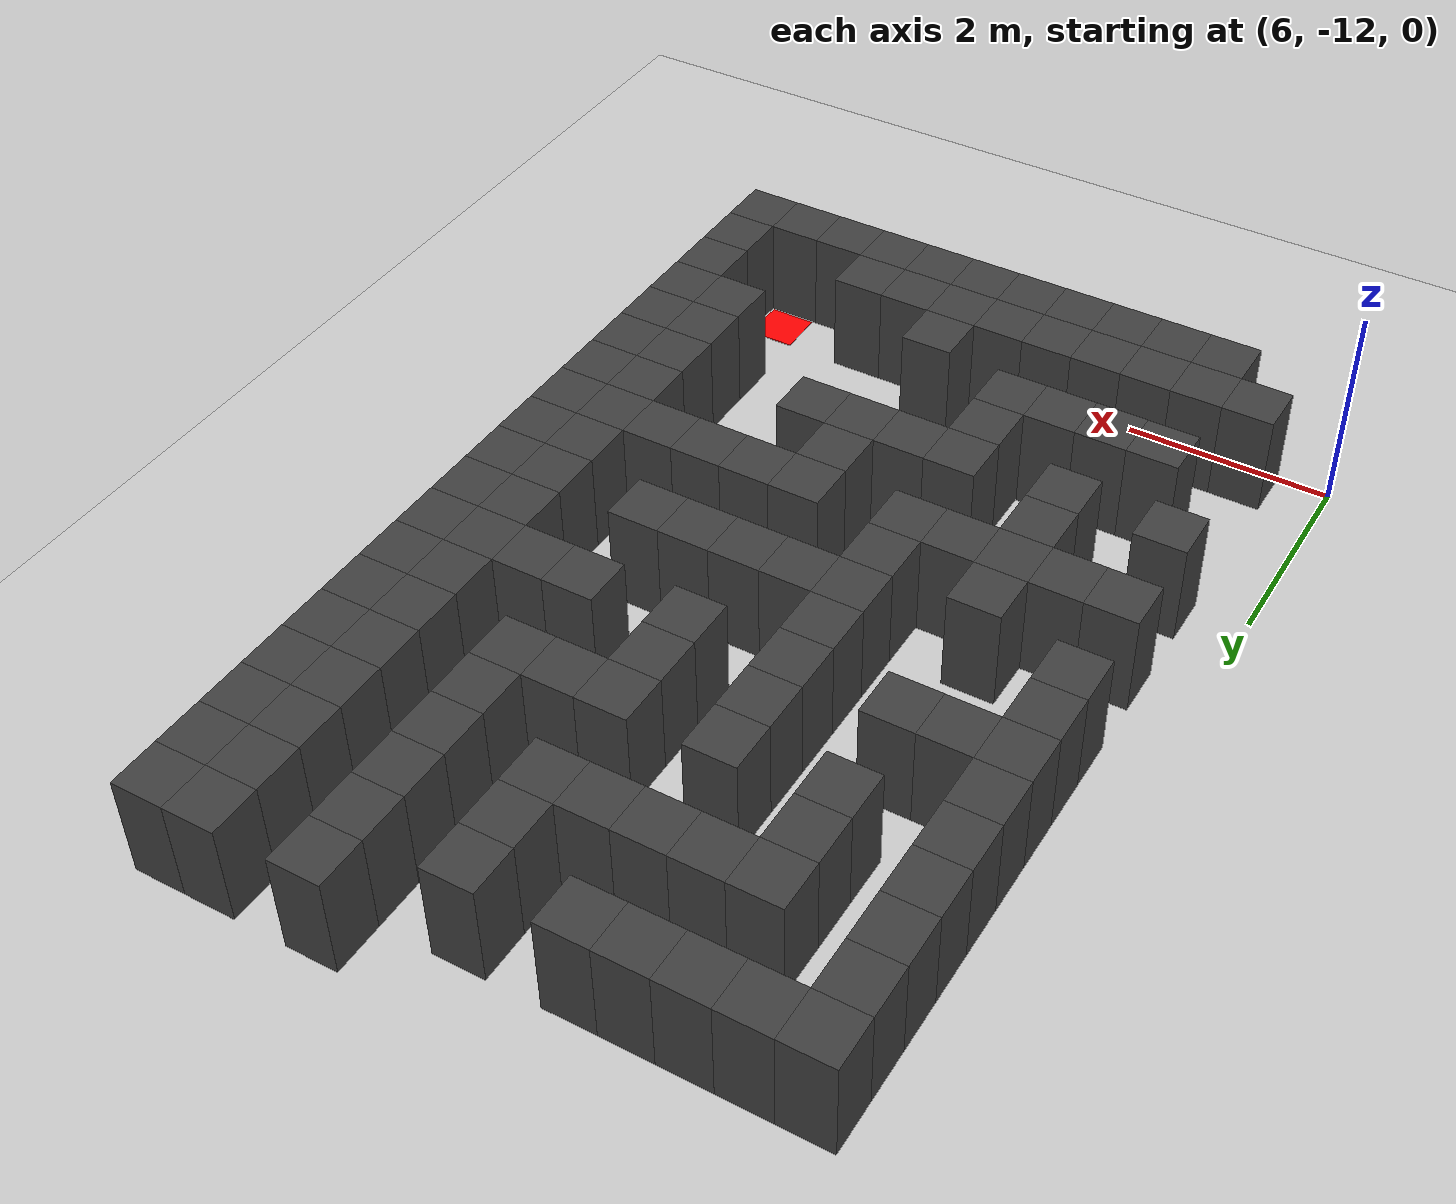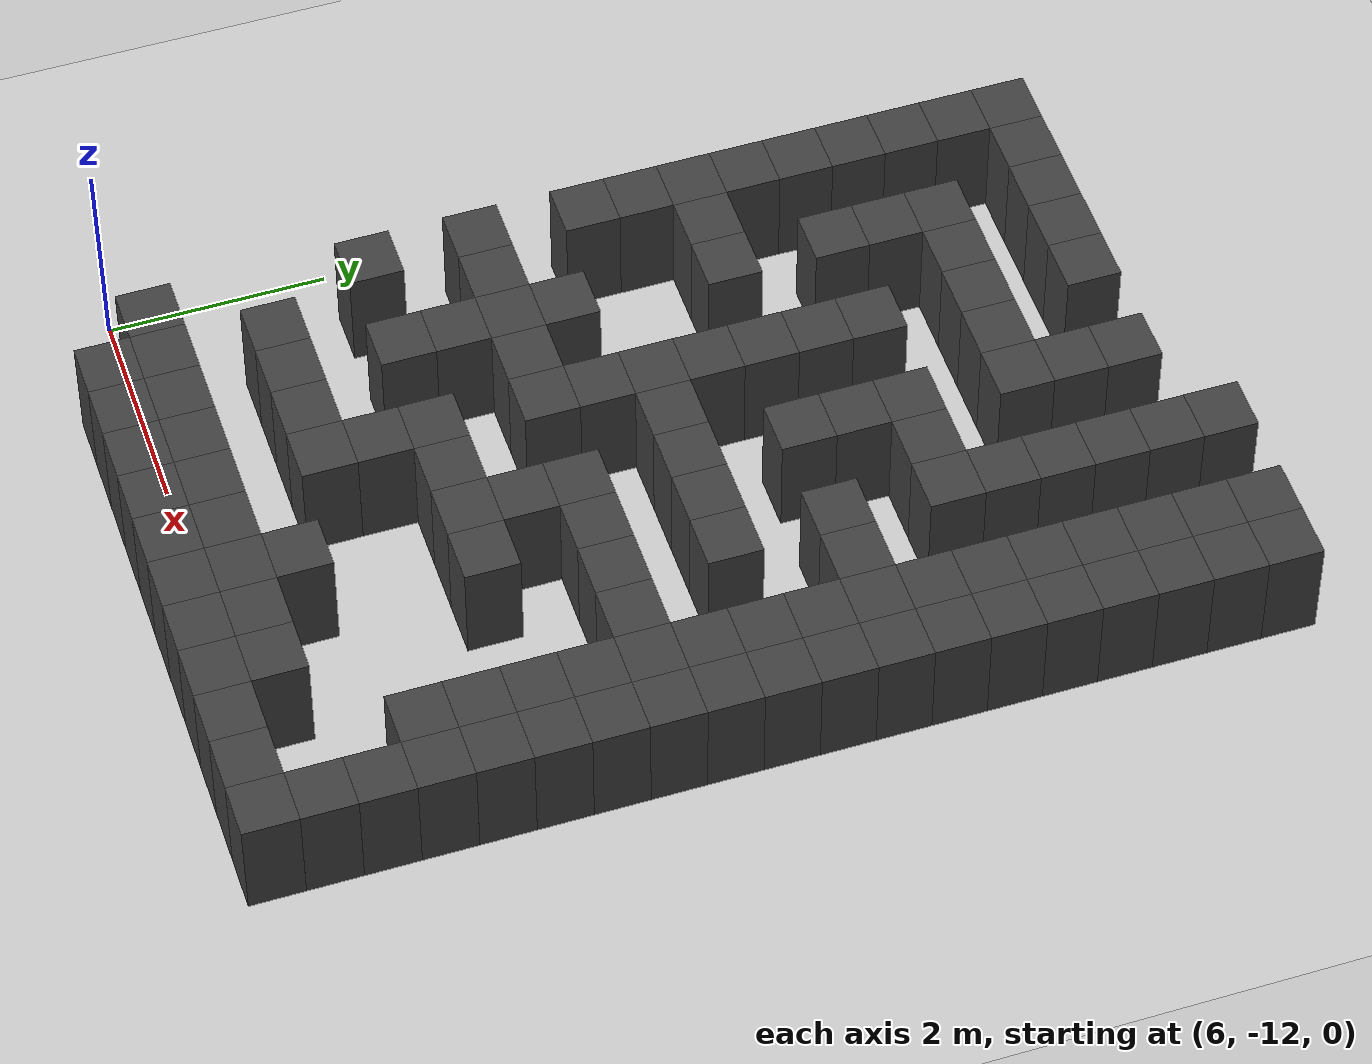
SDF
<sdf version="1.7">
 <world name="map_16588">
  <model name="ground_plane">
   <static>true</static>
   <link name="link">
    <collision name="collision">
     <geometry><plane><normal>0 0 1</normal><size>200 200</size></plane></geometry>
    </collision>
    <visual name="visual">
     <geometry><plane><normal>0 0 1</normal><size>200 200</size></plane></geometry>
     <material><ambient>0.8 0.8 0.8 1</ambient><diffuse>0.8 0.8 0.8 1</diffuse></material>
    </visual>
   </link>
  </model>
  <model name="maze_environment">
   <static>true</static>
   <link name="wall_768">
    <pose>10.750 -3.250 0.500 0 0 0</pose>
    <collision name="col"><geometry><box><size>0.5 0.5 1.0</size></box></geometry></collision>
    <visual name="vis">
     <geometry><box><size>0.5 0.5 1.0</size></box></geometry>
     <material><ambient>0.15 0.15 0.15 1</ambient><diffuse>0.25 0.25 0.25 1</diffuse></material>
    </visual>
   </link>
   <link name="wall_769">
    <pose>11.750 -3.250 0.500 0 0 0</pose>
    <collision name="col"><geometry><box><size>0.5 0.5 1.0</size></box></geometry></collision>
    <visual name="vis">
     <geometry><box><size>0.5 0.5 1.0</size></box></geometry>
     <material><ambient>0.15 0.15 0.15 1</ambient><diffuse>0.25 0.25 0.25 1</diffuse></material>
    </visual>
   </link>
   <link name="wall_770">
    <pose>12.250 -3.250 0.500 0 0 0</pose>
    <collision name="col"><geometry><box><size>0.5 0.5 1.0</size></box></geometry></collision>
    <visual name="vis">
     <geometry><box><size>0.5 0.5 1.0</size></box></geometry>
     <material><ambient>0.15 0.15 0.15 1</ambient><diffuse>0.25 0.25 0.25 1</diffuse></material>
    </visual>
   </link>
   <link name="wall_796">
    <pose>6.750 -3.750 0.500 0 0 0</pose>
    <collision name="col"><geometry><box><size>0.5 0.5 1.0</size></box></geometry></collision>
    <visual name="vis">
     <geometry><box><size>0.5 0.5 1.0</size></box></geometry>
     <material><ambient>0.15 0.15 0.15 1</ambient><diffuse>0.25 0.25 0.25 1</diffuse></material>
    </visual>
   </link>
   <link name="wall_797">
    <pose>7.250 -3.750 0.500 0 0 0</pose>
    <collision name="col"><geometry><box><size>0.5 0.5 1.0</size></box></geometry></collision>
    <visual name="vis">
     <geometry><box><size>0.5 0.5 1.0</size></box></geometry>
     <material><ambient>0.15 0.15 0.15 1</ambient><diffuse>0.25 0.25 0.25 1</diffuse></material>
    </visual>
   </link>
   <link name="wall_798">
    <pose>7.750 -3.750 0.500 0 0 0</pose>
    <collision name="col"><geometry><box><size>0.5 0.5 1.0</size></box></geometry></collision>
    <visual name="vis">
     <geometry><box><size>0.5 0.5 1.0</size></box></geometry>
     <material><ambient>0.15 0.15 0.15 1</ambient><diffuse>0.25 0.25 0.25 1</diffuse></material>
    </visual>
   </link>
   <link name="wall_799">
    <pose>8.250 -3.750 0.500 0 0 0</pose>
    <collision name="col"><geometry><box><size>0.5 0.5 1.0</size></box></geometry></collision>
    <visual name="vis">
     <geometry><box><size>0.5 0.5 1.0</size></box></geometry>
     <material><ambient>0.15 0.15 0.15 1</ambient><diffuse>0.25 0.25 0.25 1</diffuse></material>
    </visual>
   </link>
   <link name="wall_800">
    <pose>8.750 -3.750 0.500 0 0 0</pose>
    <collision name="col"><geometry><box><size>0.5 0.5 1.0</size></box></geometry></collision>
    <visual name="vis">
     <geometry><box><size>0.5 0.5 1.0</size></box></geometry>
     <material><ambient>0.15 0.15 0.15 1</ambient><diffuse>0.25 0.25 0.25 1</diffuse></material>
    </visual>
   </link>
   <link name="wall_801">
    <pose>9.750 -3.750 0.500 0 0 0</pose>
    <collision name="col"><geometry><box><size>0.5 0.5 1.0</size></box></geometry></collision>
    <visual name="vis">
     <geometry><box><size>0.5 0.5 1.0</size></box></geometry>
     <material><ambient>0.15 0.15 0.15 1</ambient><diffuse>0.25 0.25 0.25 1</diffuse></material>
    </visual>
   </link>
   <link name="wall_802">
    <pose>10.750 -3.750 0.500 0 0 0</pose>
    <collision name="col"><geometry><box><size>0.5 0.5 1.0</size></box></geometry></collision>
    <visual name="vis">
     <geometry><box><size>0.5 0.5 1.0</size></box></geometry>
     <material><ambient>0.15 0.15 0.15 1</ambient><diffuse>0.25 0.25 0.25 1</diffuse></material>
    </visual>
   </link>
   <link name="wall_803">
    <pose>11.750 -3.750 0.500 0 0 0</pose>
    <collision name="col"><geometry><box><size>0.5 0.5 1.0</size></box></geometry></collision>
    <visual name="vis">
     <geometry><box><size>0.5 0.5 1.0</size></box></geometry>
     <material><ambient>0.15 0.15 0.15 1</ambient><diffuse>0.25 0.25 0.25 1</diffuse></material>
    </visual>
   </link>
   <link name="wall_804">
    <pose>12.250 -3.750 0.500 0 0 0</pose>
    <collision name="col"><geometry><box><size>0.5 0.5 1.0</size></box></geometry></collision>
    <visual name="vis">
     <geometry><box><size>0.5 0.5 1.0</size></box></geometry>
     <material><ambient>0.15 0.15 0.15 1</ambient><diffuse>0.25 0.25 0.25 1</diffuse></material>
    </visual>
   </link>
   <link name="wall_817">
    <pose>6.750 -4.250 0.500 0 0 0</pose>
    <collision name="col"><geometry><box><size>0.5 0.5 1.0</size></box></geometry></collision>
    <visual name="vis">
     <geometry><box><size>0.5 0.5 1.0</size></box></geometry>
     <material><ambient>0.15 0.15 0.15 1</ambient><diffuse>0.25 0.25 0.25 1</diffuse></material>
    </visual>
   </link>
   <link name="wall_818">
    <pose>9.750 -4.250 0.500 0 0 0</pose>
    <collision name="col"><geometry><box><size>0.5 0.5 1.0</size></box></geometry></collision>
    <visual name="vis">
     <geometry><box><size>0.5 0.5 1.0</size></box></geometry>
     <material><ambient>0.15 0.15 0.15 1</ambient><diffuse>0.25 0.25 0.25 1</diffuse></material>
    </visual>
   </link>
   <link name="wall_819">
    <pose>10.750 -4.250 0.500 0 0 0</pose>
    <collision name="col"><geometry><box><size>0.5 0.5 1.0</size></box></geometry></collision>
    <visual name="vis">
     <geometry><box><size>0.5 0.5 1.0</size></box></geometry>
     <material><ambient>0.15 0.15 0.15 1</ambient><diffuse>0.25 0.25 0.25 1</diffuse></material>
    </visual>
   </link>
   <link name="wall_820">
    <pose>11.750 -4.250 0.500 0 0 0</pose>
    <collision name="col"><geometry><box><size>0.5 0.5 1.0</size></box></geometry></collision>
    <visual name="vis">
     <geometry><box><size>0.5 0.5 1.0</size></box></geometry>
     <material><ambient>0.15 0.15 0.15 1</ambient><diffuse>0.25 0.25 0.25 1</diffuse></material>
    </visual>
   </link>
   <link name="wall_821">
    <pose>12.250 -4.250 0.500 0 0 0</pose>
    <collision name="col"><geometry><box><size>0.5 0.5 1.0</size></box></geometry></collision>
    <visual name="vis">
     <geometry><box><size>0.5 0.5 1.0</size></box></geometry>
     <material><ambient>0.15 0.15 0.15 1</ambient><diffuse>0.25 0.25 0.25 1</diffuse></material>
    </visual>
   </link>
   <link name="wall_845">
    <pose>6.750 -4.750 0.500 0 0 0</pose>
    <collision name="col"><geometry><box><size>0.5 0.5 1.0</size></box></geometry></collision>
    <visual name="vis">
     <geometry><box><size>0.5 0.5 1.0</size></box></geometry>
     <material><ambient>0.15 0.15 0.15 1</ambient><diffuse>0.25 0.25 0.25 1</diffuse></material>
    </visual>
   </link>
   <link name="wall_846">
    <pose>7.750 -4.750 0.500 0 0 0</pose>
    <collision name="col"><geometry><box><size>0.5 0.5 1.0</size></box></geometry></collision>
    <visual name="vis">
     <geometry><box><size>0.5 0.5 1.0</size></box></geometry>
     <material><ambient>0.15 0.15 0.15 1</ambient><diffuse>0.25 0.25 0.25 1</diffuse></material>
    </visual>
   </link>
   <link name="wall_847">
    <pose>8.250 -4.750 0.500 0 0 0</pose>
    <collision name="col"><geometry><box><size>0.5 0.5 1.0</size></box></geometry></collision>
    <visual name="vis">
     <geometry><box><size>0.5 0.5 1.0</size></box></geometry>
     <material><ambient>0.15 0.15 0.15 1</ambient><diffuse>0.25 0.25 0.25 1</diffuse></material>
    </visual>
   </link>
   <link name="wall_848">
    <pose>8.750 -4.750 0.500 0 0 0</pose>
    <collision name="col"><geometry><box><size>0.5 0.5 1.0</size></box></geometry></collision>
    <visual name="vis">
     <geometry><box><size>0.5 0.5 1.0</size></box></geometry>
     <material><ambient>0.15 0.15 0.15 1</ambient><diffuse>0.25 0.25 0.25 1</diffuse></material>
    </visual>
   </link>
   <link name="wall_849">
    <pose>9.250 -4.750 0.500 0 0 0</pose>
    <collision name="col"><geometry><box><size>0.5 0.5 1.0</size></box></geometry></collision>
    <visual name="vis">
     <geometry><box><size>0.5 0.5 1.0</size></box></geometry>
     <material><ambient>0.15 0.15 0.15 1</ambient><diffuse>0.25 0.25 0.25 1</diffuse></material>
    </visual>
   </link>
   <link name="wall_850">
    <pose>9.750 -4.750 0.500 0 0 0</pose>
    <collision name="col"><geometry><box><size>0.5 0.5 1.0</size></box></geometry></collision>
    <visual name="vis">
     <geometry><box><size>0.5 0.5 1.0</size></box></geometry>
     <material><ambient>0.15 0.15 0.15 1</ambient><diffuse>0.25 0.25 0.25 1</diffuse></material>
    </visual>
   </link>
   <link name="wall_851">
    <pose>10.750 -4.750 0.500 0 0 0</pose>
    <collision name="col"><geometry><box><size>0.5 0.5 1.0</size></box></geometry></collision>
    <visual name="vis">
     <geometry><box><size>0.5 0.5 1.0</size></box></geometry>
     <material><ambient>0.15 0.15 0.15 1</ambient><diffuse>0.25 0.25 0.25 1</diffuse></material>
    </visual>
   </link>
   <link name="wall_852">
    <pose>11.750 -4.750 0.500 0 0 0</pose>
    <collision name="col"><geometry><box><size>0.5 0.5 1.0</size></box></geometry></collision>
    <visual name="vis">
     <geometry><box><size>0.5 0.5 1.0</size></box></geometry>
     <material><ambient>0.15 0.15 0.15 1</ambient><diffuse>0.25 0.25 0.25 1</diffuse></material>
    </visual>
   </link>
   <link name="wall_853">
    <pose>12.250 -4.750 0.500 0 0 0</pose>
    <collision name="col"><geometry><box><size>0.5 0.5 1.0</size></box></geometry></collision>
    <visual name="vis">
     <geometry><box><size>0.5 0.5 1.0</size></box></geometry>
     <material><ambient>0.15 0.15 0.15 1</ambient><diffuse>0.25 0.25 0.25 1</diffuse></material>
    </visual>
   </link>
   <link name="wall_862">
    <pose>6.750 -5.250 0.500 0 0 0</pose>
    <collision name="col"><geometry><box><size>0.5 0.5 1.0</size></box></geometry></collision>
    <visual name="vis">
     <geometry><box><size>0.5 0.5 1.0</size></box></geometry>
     <material><ambient>0.15 0.15 0.15 1</ambient><diffuse>0.25 0.25 0.25 1</diffuse></material>
    </visual>
   </link>
   <link name="wall_863">
    <pose>7.750 -5.250 0.500 0 0 0</pose>
    <collision name="col"><geometry><box><size>0.5 0.5 1.0</size></box></geometry></collision>
    <visual name="vis">
     <geometry><box><size>0.5 0.5 1.0</size></box></geometry>
     <material><ambient>0.15 0.15 0.15 1</ambient><diffuse>0.25 0.25 0.25 1</diffuse></material>
    </visual>
   </link>
   <link name="wall_864">
    <pose>10.750 -5.250 0.500 0 0 0</pose>
    <collision name="col"><geometry><box><size>0.5 0.5 1.0</size></box></geometry></collision>
    <visual name="vis">
     <geometry><box><size>0.5 0.5 1.0</size></box></geometry>
     <material><ambient>0.15 0.15 0.15 1</ambient><diffuse>0.25 0.25 0.25 1</diffuse></material>
    </visual>
   </link>
   <link name="wall_865">
    <pose>11.750 -5.250 0.500 0 0 0</pose>
    <collision name="col"><geometry><box><size>0.5 0.5 1.0</size></box></geometry></collision>
    <visual name="vis">
     <geometry><box><size>0.5 0.5 1.0</size></box></geometry>
     <material><ambient>0.15 0.15 0.15 1</ambient><diffuse>0.25 0.25 0.25 1</diffuse></material>
    </visual>
   </link>
   <link name="wall_866">
    <pose>12.250 -5.250 0.500 0 0 0</pose>
    <collision name="col"><geometry><box><size>0.5 0.5 1.0</size></box></geometry></collision>
    <visual name="vis">
     <geometry><box><size>0.5 0.5 1.0</size></box></geometry>
     <material><ambient>0.15 0.15 0.15 1</ambient><diffuse>0.25 0.25 0.25 1</diffuse></material>
    </visual>
   </link>
   <link name="wall_890">
    <pose>6.750 -5.750 0.500 0 0 0</pose>
    <collision name="col"><geometry><box><size>0.5 0.5 1.0</size></box></geometry></collision>
    <visual name="vis">
     <geometry><box><size>0.5 0.5 1.0</size></box></geometry>
     <material><ambient>0.15 0.15 0.15 1</ambient><diffuse>0.25 0.25 0.25 1</diffuse></material>
    </visual>
   </link>
   <link name="wall_891">
    <pose>7.750 -5.750 0.500 0 0 0</pose>
    <collision name="col"><geometry><box><size>0.5 0.5 1.0</size></box></geometry></collision>
    <visual name="vis">
     <geometry><box><size>0.5 0.5 1.0</size></box></geometry>
     <material><ambient>0.15 0.15 0.15 1</ambient><diffuse>0.25 0.25 0.25 1</diffuse></material>
    </visual>
   </link>
   <link name="wall_892">
    <pose>8.750 -5.750 0.500 0 0 0</pose>
    <collision name="col"><geometry><box><size>0.5 0.5 1.0</size></box></geometry></collision>
    <visual name="vis">
     <geometry><box><size>0.5 0.5 1.0</size></box></geometry>
     <material><ambient>0.15 0.15 0.15 1</ambient><diffuse>0.25 0.25 0.25 1</diffuse></material>
    </visual>
   </link>
   <link name="wall_893">
    <pose>9.750 -5.750 0.500 0 0 0</pose>
    <collision name="col"><geometry><box><size>0.5 0.5 1.0</size></box></geometry></collision>
    <visual name="vis">
     <geometry><box><size>0.5 0.5 1.0</size></box></geometry>
     <material><ambient>0.15 0.15 0.15 1</ambient><diffuse>0.25 0.25 0.25 1</diffuse></material>
    </visual>
   </link>
   <link name="wall_894">
    <pose>10.250 -5.750 0.500 0 0 0</pose>
    <collision name="col"><geometry><box><size>0.5 0.5 1.0</size></box></geometry></collision>
    <visual name="vis">
     <geometry><box><size>0.5 0.5 1.0</size></box></geometry>
     <material><ambient>0.15 0.15 0.15 1</ambient><diffuse>0.25 0.25 0.25 1</diffuse></material>
    </visual>
   </link>
   <link name="wall_895">
    <pose>10.750 -5.750 0.500 0 0 0</pose>
    <collision name="col"><geometry><box><size>0.5 0.5 1.0</size></box></geometry></collision>
    <visual name="vis">
     <geometry><box><size>0.5 0.5 1.0</size></box></geometry>
     <material><ambient>0.15 0.15 0.15 1</ambient><diffuse>0.25 0.25 0.25 1</diffuse></material>
    </visual>
   </link>
   <link name="wall_896">
    <pose>11.750 -5.750 0.500 0 0 0</pose>
    <collision name="col"><geometry><box><size>0.5 0.5 1.0</size></box></geometry></collision>
    <visual name="vis">
     <geometry><box><size>0.5 0.5 1.0</size></box></geometry>
     <material><ambient>0.15 0.15 0.15 1</ambient><diffuse>0.25 0.25 0.25 1</diffuse></material>
    </visual>
   </link>
   <link name="wall_897">
    <pose>12.250 -5.750 0.500 0 0 0</pose>
    <collision name="col"><geometry><box><size>0.5 0.5 1.0</size></box></geometry></collision>
    <visual name="vis">
     <geometry><box><size>0.5 0.5 1.0</size></box></geometry>
     <material><ambient>0.15 0.15 0.15 1</ambient><diffuse>0.25 0.25 0.25 1</diffuse></material>
    </visual>
   </link>
   <link name="wall_907">
    <pose>6.750 -6.250 0.500 0 0 0</pose>
    <collision name="col"><geometry><box><size>0.5 0.5 1.0</size></box></geometry></collision>
    <visual name="vis">
     <geometry><box><size>0.5 0.5 1.0</size></box></geometry>
     <material><ambient>0.15 0.15 0.15 1</ambient><diffuse>0.25 0.25 0.25 1</diffuse></material>
    </visual>
   </link>
   <link name="wall_908">
    <pose>8.750 -6.250 0.500 0 0 0</pose>
    <collision name="col"><geometry><box><size>0.5 0.5 1.0</size></box></geometry></collision>
    <visual name="vis">
     <geometry><box><size>0.5 0.5 1.0</size></box></geometry>
     <material><ambient>0.15 0.15 0.15 1</ambient><diffuse>0.25 0.25 0.25 1</diffuse></material>
    </visual>
   </link>
   <link name="wall_909">
    <pose>9.750 -6.250 0.500 0 0 0</pose>
    <collision name="col"><geometry><box><size>0.5 0.5 1.0</size></box></geometry></collision>
    <visual name="vis">
     <geometry><box><size>0.5 0.5 1.0</size></box></geometry>
     <material><ambient>0.15 0.15 0.15 1</ambient><diffuse>0.25 0.25 0.25 1</diffuse></material>
    </visual>
   </link>
   <link name="wall_910">
    <pose>11.750 -6.250 0.500 0 0 0</pose>
    <collision name="col"><geometry><box><size>0.5 0.5 1.0</size></box></geometry></collision>
    <visual name="vis">
     <geometry><box><size>0.5 0.5 1.0</size></box></geometry>
     <material><ambient>0.15 0.15 0.15 1</ambient><diffuse>0.25 0.25 0.25 1</diffuse></material>
    </visual>
   </link>
   <link name="wall_911">
    <pose>12.250 -6.250 0.500 0 0 0</pose>
    <collision name="col"><geometry><box><size>0.5 0.5 1.0</size></box></geometry></collision>
    <visual name="vis">
     <geometry><box><size>0.5 0.5 1.0</size></box></geometry>
     <material><ambient>0.15 0.15 0.15 1</ambient><diffuse>0.25 0.25 0.25 1</diffuse></material>
    </visual>
   </link>
   <link name="wall_936">
    <pose>6.750 -6.750 0.500 0 0 0</pose>
    <collision name="col"><geometry><box><size>0.5 0.5 1.0</size></box></geometry></collision>
    <visual name="vis">
     <geometry><box><size>0.5 0.5 1.0</size></box></geometry>
     <material><ambient>0.15 0.15 0.15 1</ambient><diffuse>0.25 0.25 0.25 1</diffuse></material>
    </visual>
   </link>
   <link name="wall_937">
    <pose>7.250 -6.750 0.500 0 0 0</pose>
    <collision name="col"><geometry><box><size>0.5 0.5 1.0</size></box></geometry></collision>
    <visual name="vis">
     <geometry><box><size>0.5 0.5 1.0</size></box></geometry>
     <material><ambient>0.15 0.15 0.15 1</ambient><diffuse>0.25 0.25 0.25 1</diffuse></material>
    </visual>
   </link>
   <link name="wall_938">
    <pose>7.750 -6.750 0.500 0 0 0</pose>
    <collision name="col"><geometry><box><size>0.5 0.5 1.0</size></box></geometry></collision>
    <visual name="vis">
     <geometry><box><size>0.5 0.5 1.0</size></box></geometry>
     <material><ambient>0.15 0.15 0.15 1</ambient><diffuse>0.25 0.25 0.25 1</diffuse></material>
    </visual>
   </link>
   <link name="wall_939">
    <pose>8.750 -6.750 0.500 0 0 0</pose>
    <collision name="col"><geometry><box><size>0.5 0.5 1.0</size></box></geometry></collision>
    <visual name="vis">
     <geometry><box><size>0.5 0.5 1.0</size></box></geometry>
     <material><ambient>0.15 0.15 0.15 1</ambient><diffuse>0.25 0.25 0.25 1</diffuse></material>
    </visual>
   </link>
   <link name="wall_940">
    <pose>9.750 -6.750 0.500 0 0 0</pose>
    <collision name="col"><geometry><box><size>0.5 0.5 1.0</size></box></geometry></collision>
    <visual name="vis">
     <geometry><box><size>0.5 0.5 1.0</size></box></geometry>
     <material><ambient>0.15 0.15 0.15 1</ambient><diffuse>0.25 0.25 0.25 1</diffuse></material>
    </visual>
   </link>
   <link name="wall_941">
    <pose>10.750 -6.750 0.500 0 0 0</pose>
    <collision name="col"><geometry><box><size>0.5 0.5 1.0</size></box></geometry></collision>
    <visual name="vis">
     <geometry><box><size>0.5 0.5 1.0</size></box></geometry>
     <material><ambient>0.15 0.15 0.15 1</ambient><diffuse>0.25 0.25 0.25 1</diffuse></material>
    </visual>
   </link>
   <link name="wall_942">
    <pose>11.250 -6.750 0.500 0 0 0</pose>
    <collision name="col"><geometry><box><size>0.5 0.5 1.0</size></box></geometry></collision>
    <visual name="vis">
     <geometry><box><size>0.5 0.5 1.0</size></box></geometry>
     <material><ambient>0.15 0.15 0.15 1</ambient><diffuse>0.25 0.25 0.25 1</diffuse></material>
    </visual>
   </link>
   <link name="wall_943">
    <pose>11.750 -6.750 0.500 0 0 0</pose>
    <collision name="col"><geometry><box><size>0.5 0.5 1.0</size></box></geometry></collision>
    <visual name="vis">
     <geometry><box><size>0.5 0.5 1.0</size></box></geometry>
     <material><ambient>0.15 0.15 0.15 1</ambient><diffuse>0.25 0.25 0.25 1</diffuse></material>
    </visual>
   </link>
   <link name="wall_944">
    <pose>12.250 -6.750 0.500 0 0 0</pose>
    <collision name="col"><geometry><box><size>0.5 0.5 1.0</size></box></geometry></collision>
    <visual name="vis">
     <geometry><box><size>0.5 0.5 1.0</size></box></geometry>
     <material><ambient>0.15 0.15 0.15 1</ambient><diffuse>0.25 0.25 0.25 1</diffuse></material>
    </visual>
   </link>
   <link name="wall_952">
    <pose>6.750 -7.250 0.500 0 0 0</pose>
    <collision name="col"><geometry><box><size>0.5 0.5 1.0</size></box></geometry></collision>
    <visual name="vis">
     <geometry><box><size>0.5 0.5 1.0</size></box></geometry>
     <material><ambient>0.15 0.15 0.15 1</ambient><diffuse>0.25 0.25 0.25 1</diffuse></material>
    </visual>
   </link>
   <link name="wall_953">
    <pose>8.750 -7.250 0.500 0 0 0</pose>
    <collision name="col"><geometry><box><size>0.5 0.5 1.0</size></box></geometry></collision>
    <visual name="vis">
     <geometry><box><size>0.5 0.5 1.0</size></box></geometry>
     <material><ambient>0.15 0.15 0.15 1</ambient><diffuse>0.25 0.25 0.25 1</diffuse></material>
    </visual>
   </link>
   <link name="wall_954">
    <pose>11.750 -7.250 0.500 0 0 0</pose>
    <collision name="col"><geometry><box><size>0.5 0.5 1.0</size></box></geometry></collision>
    <visual name="vis">
     <geometry><box><size>0.5 0.5 1.0</size></box></geometry>
     <material><ambient>0.15 0.15 0.15 1</ambient><diffuse>0.25 0.25 0.25 1</diffuse></material>
    </visual>
   </link>
   <link name="wall_955">
    <pose>12.250 -7.250 0.500 0 0 0</pose>
    <collision name="col"><geometry><box><size>0.5 0.5 1.0</size></box></geometry></collision>
    <visual name="vis">
     <geometry><box><size>0.5 0.5 1.0</size></box></geometry>
     <material><ambient>0.15 0.15 0.15 1</ambient><diffuse>0.25 0.25 0.25 1</diffuse></material>
    </visual>
   </link>
   <link name="wall_987">
    <pose>6.750 -7.750 0.500 0 0 0</pose>
    <collision name="col"><geometry><box><size>0.5 0.5 1.0</size></box></geometry></collision>
    <visual name="vis">
     <geometry><box><size>0.5 0.5 1.0</size></box></geometry>
     <material><ambient>0.15 0.15 0.15 1</ambient><diffuse>0.25 0.25 0.25 1</diffuse></material>
    </visual>
   </link>
   <link name="wall_988">
    <pose>8.750 -7.750 0.500 0 0 0</pose>
    <collision name="col"><geometry><box><size>0.5 0.5 1.0</size></box></geometry></collision>
    <visual name="vis">
     <geometry><box><size>0.5 0.5 1.0</size></box></geometry>
     <material><ambient>0.15 0.15 0.15 1</ambient><diffuse>0.25 0.25 0.25 1</diffuse></material>
    </visual>
   </link>
   <link name="wall_989">
    <pose>9.250 -7.750 0.500 0 0 0</pose>
    <collision name="col"><geometry><box><size>0.5 0.5 1.0</size></box></geometry></collision>
    <visual name="vis">
     <geometry><box><size>0.5 0.5 1.0</size></box></geometry>
     <material><ambient>0.15 0.15 0.15 1</ambient><diffuse>0.25 0.25 0.25 1</diffuse></material>
    </visual>
   </link>
   <link name="wall_990">
    <pose>9.750 -7.750 0.500 0 0 0</pose>
    <collision name="col"><geometry><box><size>0.5 0.5 1.0</size></box></geometry></collision>
    <visual name="vis">
     <geometry><box><size>0.5 0.5 1.0</size></box></geometry>
     <material><ambient>0.15 0.15 0.15 1</ambient><diffuse>0.25 0.25 0.25 1</diffuse></material>
    </visual>
   </link>
   <link name="wall_991">
    <pose>10.250 -7.750 0.500 0 0 0</pose>
    <collision name="col"><geometry><box><size>0.5 0.5 1.0</size></box></geometry></collision>
    <visual name="vis">
     <geometry><box><size>0.5 0.5 1.0</size></box></geometry>
     <material><ambient>0.15 0.15 0.15 1</ambient><diffuse>0.25 0.25 0.25 1</diffuse></material>
    </visual>
   </link>
   <link name="wall_992">
    <pose>10.750 -7.750 0.500 0 0 0</pose>
    <collision name="col"><geometry><box><size>0.5 0.5 1.0</size></box></geometry></collision>
    <visual name="vis">
     <geometry><box><size>0.5 0.5 1.0</size></box></geometry>
     <material><ambient>0.15 0.15 0.15 1</ambient><diffuse>0.25 0.25 0.25 1</diffuse></material>
    </visual>
   </link>
   <link name="wall_993">
    <pose>11.750 -7.750 0.500 0 0 0</pose>
    <collision name="col"><geometry><box><size>0.5 0.5 1.0</size></box></geometry></collision>
    <visual name="vis">
     <geometry><box><size>0.5 0.5 1.0</size></box></geometry>
     <material><ambient>0.15 0.15 0.15 1</ambient><diffuse>0.25 0.25 0.25 1</diffuse></material>
    </visual>
   </link>
   <link name="wall_994">
    <pose>12.250 -7.750 0.500 0 0 0</pose>
    <collision name="col"><geometry><box><size>0.5 0.5 1.0</size></box></geometry></collision>
    <visual name="vis">
     <geometry><box><size>0.5 0.5 1.0</size></box></geometry>
     <material><ambient>0.15 0.15 0.15 1</ambient><diffuse>0.25 0.25 0.25 1</diffuse></material>
    </visual>
   </link>
   <link name="wall_1005">
    <pose>7.750 -8.250 0.500 0 0 0</pose>
    <collision name="col"><geometry><box><size>0.5 0.5 1.0</size></box></geometry></collision>
    <visual name="vis">
     <geometry><box><size>0.5 0.5 1.0</size></box></geometry>
     <material><ambient>0.15 0.15 0.15 1</ambient><diffuse>0.25 0.25 0.25 1</diffuse></material>
    </visual>
   </link>
   <link name="wall_1006">
    <pose>8.750 -8.250 0.500 0 0 0</pose>
    <collision name="col"><geometry><box><size>0.5 0.5 1.0</size></box></geometry></collision>
    <visual name="vis">
     <geometry><box><size>0.5 0.5 1.0</size></box></geometry>
     <material><ambient>0.15 0.15 0.15 1</ambient><diffuse>0.25 0.25 0.25 1</diffuse></material>
    </visual>
   </link>
   <link name="wall_1007">
    <pose>11.750 -8.250 0.500 0 0 0</pose>
    <collision name="col"><geometry><box><size>0.5 0.5 1.0</size></box></geometry></collision>
    <visual name="vis">
     <geometry><box><size>0.5 0.5 1.0</size></box></geometry>
     <material><ambient>0.15 0.15 0.15 1</ambient><diffuse>0.25 0.25 0.25 1</diffuse></material>
    </visual>
   </link>
   <link name="wall_1008">
    <pose>12.250 -8.250 0.500 0 0 0</pose>
    <collision name="col"><geometry><box><size>0.5 0.5 1.0</size></box></geometry></collision>
    <visual name="vis">
     <geometry><box><size>0.5 0.5 1.0</size></box></geometry>
     <material><ambient>0.15 0.15 0.15 1</ambient><diffuse>0.25 0.25 0.25 1</diffuse></material>
    </visual>
   </link>
   <link name="wall_1033">
    <pose>6.750 -8.750 0.500 0 0 0</pose>
    <collision name="col"><geometry><box><size>0.5 0.5 1.0</size></box></geometry></collision>
    <visual name="vis">
     <geometry><box><size>0.5 0.5 1.0</size></box></geometry>
     <material><ambient>0.15 0.15 0.15 1</ambient><diffuse>0.25 0.25 0.25 1</diffuse></material>
    </visual>
   </link>
   <link name="wall_1034">
    <pose>7.250 -8.750 0.500 0 0 0</pose>
    <collision name="col"><geometry><box><size>0.5 0.5 1.0</size></box></geometry></collision>
    <visual name="vis">
     <geometry><box><size>0.5 0.5 1.0</size></box></geometry>
     <material><ambient>0.15 0.15 0.15 1</ambient><diffuse>0.25 0.25 0.25 1</diffuse></material>
    </visual>
   </link>
   <link name="wall_1035">
    <pose>7.750 -8.750 0.500 0 0 0</pose>
    <collision name="col"><geometry><box><size>0.5 0.5 1.0</size></box></geometry></collision>
    <visual name="vis">
     <geometry><box><size>0.5 0.5 1.0</size></box></geometry>
     <material><ambient>0.15 0.15 0.15 1</ambient><diffuse>0.25 0.25 0.25 1</diffuse></material>
    </visual>
   </link>
   <link name="wall_1036">
    <pose>8.250 -8.750 0.500 0 0 0</pose>
    <collision name="col"><geometry><box><size>0.5 0.5 1.0</size></box></geometry></collision>
    <visual name="vis">
     <geometry><box><size>0.5 0.5 1.0</size></box></geometry>
     <material><ambient>0.15 0.15 0.15 1</ambient><diffuse>0.25 0.25 0.25 1</diffuse></material>
    </visual>
   </link>
   <link name="wall_1037">
    <pose>8.750 -8.750 0.500 0 0 0</pose>
    <collision name="col"><geometry><box><size>0.5 0.5 1.0</size></box></geometry></collision>
    <visual name="vis">
     <geometry><box><size>0.5 0.5 1.0</size></box></geometry>
     <material><ambient>0.15 0.15 0.15 1</ambient><diffuse>0.25 0.25 0.25 1</diffuse></material>
    </visual>
   </link>
   <link name="wall_1038">
    <pose>9.750 -8.750 0.500 0 0 0</pose>
    <collision name="col"><geometry><box><size>0.5 0.5 1.0</size></box></geometry></collision>
    <visual name="vis">
     <geometry><box><size>0.5 0.5 1.0</size></box></geometry>
     <material><ambient>0.15 0.15 0.15 1</ambient><diffuse>0.25 0.25 0.25 1</diffuse></material>
    </visual>
   </link>
   <link name="wall_1039">
    <pose>10.250 -8.750 0.500 0 0 0</pose>
    <collision name="col"><geometry><box><size>0.5 0.5 1.0</size></box></geometry></collision>
    <visual name="vis">
     <geometry><box><size>0.5 0.5 1.0</size></box></geometry>
     <material><ambient>0.15 0.15 0.15 1</ambient><diffuse>0.25 0.25 0.25 1</diffuse></material>
    </visual>
   </link>
   <link name="wall_1040">
    <pose>10.750 -8.750 0.500 0 0 0</pose>
    <collision name="col"><geometry><box><size>0.5 0.5 1.0</size></box></geometry></collision>
    <visual name="vis">
     <geometry><box><size>0.5 0.5 1.0</size></box></geometry>
     <material><ambient>0.15 0.15 0.15 1</ambient><diffuse>0.25 0.25 0.25 1</diffuse></material>
    </visual>
   </link>
   <link name="wall_1041">
    <pose>11.250 -8.750 0.500 0 0 0</pose>
    <collision name="col"><geometry><box><size>0.5 0.5 1.0</size></box></geometry></collision>
    <visual name="vis">
     <geometry><box><size>0.5 0.5 1.0</size></box></geometry>
     <material><ambient>0.15 0.15 0.15 1</ambient><diffuse>0.25 0.25 0.25 1</diffuse></material>
    </visual>
   </link>
   <link name="wall_1042">
    <pose>11.750 -8.750 0.500 0 0 0</pose>
    <collision name="col"><geometry><box><size>0.5 0.5 1.0</size></box></geometry></collision>
    <visual name="vis">
     <geometry><box><size>0.5 0.5 1.0</size></box></geometry>
     <material><ambient>0.15 0.15 0.15 1</ambient><diffuse>0.25 0.25 0.25 1</diffuse></material>
    </visual>
   </link>
   <link name="wall_1043">
    <pose>12.250 -8.750 0.500 0 0 0</pose>
    <collision name="col"><geometry><box><size>0.5 0.5 1.0</size></box></geometry></collision>
    <visual name="vis">
     <geometry><box><size>0.5 0.5 1.0</size></box></geometry>
     <material><ambient>0.15 0.15 0.15 1</ambient><diffuse>0.25 0.25 0.25 1</diffuse></material>
    </visual>
   </link>
   <link name="wall_1055">
    <pose>7.750 -9.250 0.500 0 0 0</pose>
    <collision name="col"><geometry><box><size>0.5 0.5 1.0</size></box></geometry></collision>
    <visual name="vis">
     <geometry><box><size>0.5 0.5 1.0</size></box></geometry>
     <material><ambient>0.15 0.15 0.15 1</ambient><diffuse>0.25 0.25 0.25 1</diffuse></material>
    </visual>
   </link>
   <link name="wall_1056">
    <pose>9.750 -9.250 0.500 0 0 0</pose>
    <collision name="col"><geometry><box><size>0.5 0.5 1.0</size></box></geometry></collision>
    <visual name="vis">
     <geometry><box><size>0.5 0.5 1.0</size></box></geometry>
     <material><ambient>0.15 0.15 0.15 1</ambient><diffuse>0.25 0.25 0.25 1</diffuse></material>
    </visual>
   </link>
   <link name="wall_1057">
    <pose>11.750 -9.250 0.500 0 0 0</pose>
    <collision name="col"><geometry><box><size>0.5 0.5 1.0</size></box></geometry></collision>
    <visual name="vis">
     <geometry><box><size>0.5 0.5 1.0</size></box></geometry>
     <material><ambient>0.15 0.15 0.15 1</ambient><diffuse>0.25 0.25 0.25 1</diffuse></material>
    </visual>
   </link>
   <link name="wall_1058">
    <pose>12.250 -9.250 0.500 0 0 0</pose>
    <collision name="col"><geometry><box><size>0.5 0.5 1.0</size></box></geometry></collision>
    <visual name="vis">
     <geometry><box><size>0.5 0.5 1.0</size></box></geometry>
     <material><ambient>0.15 0.15 0.15 1</ambient><diffuse>0.25 0.25 0.25 1</diffuse></material>
    </visual>
   </link>
   <link name="wall_1084">
    <pose>6.750 -9.750 0.500 0 0 0</pose>
    <collision name="col"><geometry><box><size>0.5 0.5 1.0</size></box></geometry></collision>
    <visual name="vis">
     <geometry><box><size>0.5 0.5 1.0</size></box></geometry>
     <material><ambient>0.15 0.15 0.15 1</ambient><diffuse>0.25 0.25 0.25 1</diffuse></material>
    </visual>
   </link>
   <link name="wall_1085">
    <pose>7.750 -9.750 0.500 0 0 0</pose>
    <collision name="col"><geometry><box><size>0.5 0.5 1.0</size></box></geometry></collision>
    <visual name="vis">
     <geometry><box><size>0.5 0.5 1.0</size></box></geometry>
     <material><ambient>0.15 0.15 0.15 1</ambient><diffuse>0.25 0.25 0.25 1</diffuse></material>
    </visual>
   </link>
   <link name="wall_1086">
    <pose>8.750 -9.750 0.500 0 0 0</pose>
    <collision name="col"><geometry><box><size>0.5 0.5 1.0</size></box></geometry></collision>
    <visual name="vis">
     <geometry><box><size>0.5 0.5 1.0</size></box></geometry>
     <material><ambient>0.15 0.15 0.15 1</ambient><diffuse>0.25 0.25 0.25 1</diffuse></material>
    </visual>
   </link>
   <link name="wall_1087">
    <pose>9.250 -9.750 0.500 0 0 0</pose>
    <collision name="col"><geometry><box><size>0.5 0.5 1.0</size></box></geometry></collision>
    <visual name="vis">
     <geometry><box><size>0.5 0.5 1.0</size></box></geometry>
     <material><ambient>0.15 0.15 0.15 1</ambient><diffuse>0.25 0.25 0.25 1</diffuse></material>
    </visual>
   </link>
   <link name="wall_1088">
    <pose>9.750 -9.750 0.500 0 0 0</pose>
    <collision name="col"><geometry><box><size>0.5 0.5 1.0</size></box></geometry></collision>
    <visual name="vis">
     <geometry><box><size>0.5 0.5 1.0</size></box></geometry>
     <material><ambient>0.15 0.15 0.15 1</ambient><diffuse>0.25 0.25 0.25 1</diffuse></material>
    </visual>
   </link>
   <link name="wall_1089">
    <pose>10.250 -9.750 0.500 0 0 0</pose>
    <collision name="col"><geometry><box><size>0.5 0.5 1.0</size></box></geometry></collision>
    <visual name="vis">
     <geometry><box><size>0.5 0.5 1.0</size></box></geometry>
     <material><ambient>0.15 0.15 0.15 1</ambient><diffuse>0.25 0.25 0.25 1</diffuse></material>
    </visual>
   </link>
   <link name="wall_1090">
    <pose>11.750 -9.750 0.500 0 0 0</pose>
    <collision name="col"><geometry><box><size>0.5 0.5 1.0</size></box></geometry></collision>
    <visual name="vis">
     <geometry><box><size>0.5 0.5 1.0</size></box></geometry>
     <material><ambient>0.15 0.15 0.15 1</ambient><diffuse>0.25 0.25 0.25 1</diffuse></material>
    </visual>
   </link>
   <link name="wall_1091">
    <pose>12.250 -9.750 0.500 0 0 0</pose>
    <collision name="col"><geometry><box><size>0.5 0.5 1.0</size></box></geometry></collision>
    <visual name="vis">
     <geometry><box><size>0.5 0.5 1.0</size></box></geometry>
     <material><ambient>0.15 0.15 0.15 1</ambient><diffuse>0.25 0.25 0.25 1</diffuse></material>
    </visual>
   </link>
   <link name="wall_1101">
    <pose>8.750 -10.250 0.500 0 0 0</pose>
    <collision name="col"><geometry><box><size>0.5 0.5 1.0</size></box></geometry></collision>
    <visual name="vis">
     <geometry><box><size>0.5 0.5 1.0</size></box></geometry>
     <material><ambient>0.15 0.15 0.15 1</ambient><diffuse>0.25 0.25 0.25 1</diffuse></material>
    </visual>
   </link>
   <link name="wall_1102">
    <pose>11.750 -10.250 0.500 0 0 0</pose>
    <collision name="col"><geometry><box><size>0.5 0.5 1.0</size></box></geometry></collision>
    <visual name="vis">
     <geometry><box><size>0.5 0.5 1.0</size></box></geometry>
     <material><ambient>0.15 0.15 0.15 1</ambient><diffuse>0.25 0.25 0.25 1</diffuse></material>
    </visual>
   </link>
   <link name="wall_1103">
    <pose>12.250 -10.250 0.500 0 0 0</pose>
    <collision name="col"><geometry><box><size>0.5 0.5 1.0</size></box></geometry></collision>
    <visual name="vis">
     <geometry><box><size>0.5 0.5 1.0</size></box></geometry>
     <material><ambient>0.15 0.15 0.15 1</ambient><diffuse>0.25 0.25 0.25 1</diffuse></material>
    </visual>
   </link>
   <link name="wall_1133">
    <pose>7.250 -10.750 0.500 0 0 0</pose>
    <collision name="col"><geometry><box><size>0.5 0.5 1.0</size></box></geometry></collision>
    <visual name="vis">
     <geometry><box><size>0.5 0.5 1.0</size></box></geometry>
     <material><ambient>0.15 0.15 0.15 1</ambient><diffuse>0.25 0.25 0.25 1</diffuse></material>
    </visual>
   </link>
   <link name="wall_1134">
    <pose>7.750 -10.750 0.500 0 0 0</pose>
    <collision name="col"><geometry><box><size>0.5 0.5 1.0</size></box></geometry></collision>
    <visual name="vis">
     <geometry><box><size>0.5 0.5 1.0</size></box></geometry>
     <material><ambient>0.15 0.15 0.15 1</ambient><diffuse>0.25 0.25 0.25 1</diffuse></material>
    </visual>
   </link>
   <link name="wall_1135">
    <pose>8.250 -10.750 0.500 0 0 0</pose>
    <collision name="col"><geometry><box><size>0.5 0.5 1.0</size></box></geometry></collision>
    <visual name="vis">
     <geometry><box><size>0.5 0.5 1.0</size></box></geometry>
     <material><ambient>0.15 0.15 0.15 1</ambient><diffuse>0.25 0.25 0.25 1</diffuse></material>
    </visual>
   </link>
   <link name="wall_1136">
    <pose>8.750 -10.750 0.500 0 0 0</pose>
    <collision name="col"><geometry><box><size>0.5 0.5 1.0</size></box></geometry></collision>
    <visual name="vis">
     <geometry><box><size>0.5 0.5 1.0</size></box></geometry>
     <material><ambient>0.15 0.15 0.15 1</ambient><diffuse>0.25 0.25 0.25 1</diffuse></material>
    </visual>
   </link>
   <link name="wall_1137">
    <pose>11.750 -10.750 0.500 0 0 0</pose>
    <collision name="col"><geometry><box><size>0.5 0.5 1.0</size></box></geometry></collision>
    <visual name="vis">
     <geometry><box><size>0.5 0.5 1.0</size></box></geometry>
     <material><ambient>0.15 0.15 0.15 1</ambient><diffuse>0.25 0.25 0.25 1</diffuse></material>
    </visual>
   </link>
   <link name="wall_1138">
    <pose>12.250 -10.750 0.500 0 0 0</pose>
    <collision name="col"><geometry><box><size>0.5 0.5 1.0</size></box></geometry></collision>
    <visual name="vis">
     <geometry><box><size>0.5 0.5 1.0</size></box></geometry>
     <material><ambient>0.15 0.15 0.15 1</ambient><diffuse>0.25 0.25 0.25 1</diffuse></material>
    </visual>
   </link>
   <link name="wall_1142">
    <pose>9.750 -11.250 0.500 0 0 0</pose>
    <collision name="col"><geometry><box><size>0.5 0.5 1.0</size></box></geometry></collision>
    <visual name="vis">
     <geometry><box><size>0.5 0.5 1.0</size></box></geometry>
     <material><ambient>0.15 0.15 0.15 1</ambient><diffuse>0.25 0.25 0.25 1</diffuse></material>
    </visual>
   </link>
   <link name="wall_1143">
    <pose>12.250 -11.250 0.500 0 0 0</pose>
    <collision name="col"><geometry><box><size>0.5 0.5 1.0</size></box></geometry></collision>
    <visual name="vis">
     <geometry><box><size>0.5 0.5 1.0</size></box></geometry>
     <material><ambient>0.15 0.15 0.15 1</ambient><diffuse>0.25 0.25 0.25 1</diffuse></material>
    </visual>
   </link>
   <link name="wall_1182">
    <pose>6.750 -11.750 0.500 0 0 0</pose>
    <collision name="col"><geometry><box><size>0.5 0.5 1.0</size></box></geometry></collision>
    <visual name="vis">
     <geometry><box><size>0.5 0.5 1.0</size></box></geometry>
     <material><ambient>0.15 0.15 0.15 1</ambient><diffuse>0.25 0.25 0.25 1</diffuse></material>
    </visual>
   </link>
   <link name="wall_1183">
    <pose>7.250 -11.750 0.500 0 0 0</pose>
    <collision name="col"><geometry><box><size>0.5 0.5 1.0</size></box></geometry></collision>
    <visual name="vis">
     <geometry><box><size>0.5 0.5 1.0</size></box></geometry>
     <material><ambient>0.15 0.15 0.15 1</ambient><diffuse>0.25 0.25 0.25 1</diffuse></material>
    </visual>
   </link>
   <link name="wall_1184">
    <pose>7.750 -11.750 0.500 0 0 0</pose>
    <collision name="col"><geometry><box><size>0.5 0.5 1.0</size></box></geometry></collision>
    <visual name="vis">
     <geometry><box><size>0.5 0.5 1.0</size></box></geometry>
     <material><ambient>0.15 0.15 0.15 1</ambient><diffuse>0.25 0.25 0.25 1</diffuse></material>
    </visual>
   </link>
   <link name="wall_1185">
    <pose>8.250 -11.750 0.500 0 0 0</pose>
    <collision name="col"><geometry><box><size>0.5 0.5 1.0</size></box></geometry></collision>
    <visual name="vis">
     <geometry><box><size>0.5 0.5 1.0</size></box></geometry>
     <material><ambient>0.15 0.15 0.15 1</ambient><diffuse>0.25 0.25 0.25 1</diffuse></material>
    </visual>
   </link>
   <link name="wall_1186">
    <pose>8.750 -11.750 0.500 0 0 0</pose>
    <collision name="col"><geometry><box><size>0.5 0.5 1.0</size></box></geometry></collision>
    <visual name="vis">
     <geometry><box><size>0.5 0.5 1.0</size></box></geometry>
     <material><ambient>0.15 0.15 0.15 1</ambient><diffuse>0.25 0.25 0.25 1</diffuse></material>
    </visual>
   </link>
   <link name="wall_1187">
    <pose>9.250 -11.750 0.500 0 0 0</pose>
    <collision name="col"><geometry><box><size>0.5 0.5 1.0</size></box></geometry></collision>
    <visual name="vis">
     <geometry><box><size>0.5 0.5 1.0</size></box></geometry>
     <material><ambient>0.15 0.15 0.15 1</ambient><diffuse>0.25 0.25 0.25 1</diffuse></material>
    </visual>
   </link>
   <link name="wall_1188">
    <pose>9.750 -11.750 0.500 0 0 0</pose>
    <collision name="col"><geometry><box><size>0.5 0.5 1.0</size></box></geometry></collision>
    <visual name="vis">
     <geometry><box><size>0.5 0.5 1.0</size></box></geometry>
     <material><ambient>0.15 0.15 0.15 1</ambient><diffuse>0.25 0.25 0.25 1</diffuse></material>
    </visual>
   </link>
   <link name="wall_1189">
    <pose>10.250 -11.750 0.500 0 0 0</pose>
    <collision name="col"><geometry><box><size>0.5 0.5 1.0</size></box></geometry></collision>
    <visual name="vis">
     <geometry><box><size>0.5 0.5 1.0</size></box></geometry>
     <material><ambient>0.15 0.15 0.15 1</ambient><diffuse>0.25 0.25 0.25 1</diffuse></material>
    </visual>
   </link>
   <link name="wall_1190">
    <pose>10.750 -11.750 0.500 0 0 0</pose>
    <collision name="col"><geometry><box><size>0.5 0.5 1.0</size></box></geometry></collision>
    <visual name="vis">
     <geometry><box><size>0.5 0.5 1.0</size></box></geometry>
     <material><ambient>0.15 0.15 0.15 1</ambient><diffuse>0.25 0.25 0.25 1</diffuse></material>
    </visual>
   </link>
   <link name="wall_1191">
    <pose>12.250 -11.750 0.500 0 0 0</pose>
    <collision name="col"><geometry><box><size>0.5 0.5 1.0</size></box></geometry></collision>
    <visual name="vis">
     <geometry><box><size>0.5 0.5 1.0</size></box></geometry>
     <material><ambient>0.15 0.15 0.15 1</ambient><diffuse>0.25 0.25 0.25 1</diffuse></material>
    </visual>
   </link>
   <link name="wall_1231">
    <pose>7.250 -12.250 0.500 0 0 0</pose>
    <collision name="col"><geometry><box><size>0.5 0.5 1.0</size></box></geometry></collision>
    <visual name="vis">
     <geometry><box><size>0.5 0.5 1.0</size></box></geometry>
     <material><ambient>0.15 0.15 0.15 1</ambient><diffuse>0.25 0.25 0.25 1</diffuse></material>
    </visual>
   </link>
   <link name="wall_1232">
    <pose>7.750 -12.250 0.500 0 0 0</pose>
    <collision name="col"><geometry><box><size>0.5 0.5 1.0</size></box></geometry></collision>
    <visual name="vis">
     <geometry><box><size>0.5 0.5 1.0</size></box></geometry>
     <material><ambient>0.15 0.15 0.15 1</ambient><diffuse>0.25 0.25 0.25 1</diffuse></material>
    </visual>
   </link>
   <link name="wall_1233">
    <pose>8.250 -12.250 0.500 0 0 0</pose>
    <collision name="col"><geometry><box><size>0.5 0.5 1.0</size></box></geometry></collision>
    <visual name="vis">
     <geometry><box><size>0.5 0.5 1.0</size></box></geometry>
     <material><ambient>0.15 0.15 0.15 1</ambient><diffuse>0.25 0.25 0.25 1</diffuse></material>
    </visual>
   </link>
   <link name="wall_1234">
    <pose>8.750 -12.250 0.500 0 0 0</pose>
    <collision name="col"><geometry><box><size>0.5 0.5 1.0</size></box></geometry></collision>
    <visual name="vis">
     <geometry><box><size>0.5 0.5 1.0</size></box></geometry>
     <material><ambient>0.15 0.15 0.15 1</ambient><diffuse>0.25 0.25 0.25 1</diffuse></material>
    </visual>
   </link>
   <link name="wall_1235">
    <pose>9.250 -12.250 0.500 0 0 0</pose>
    <collision name="col"><geometry><box><size>0.5 0.5 1.0</size></box></geometry></collision>
    <visual name="vis">
     <geometry><box><size>0.5 0.5 1.0</size></box></geometry>
     <material><ambient>0.15 0.15 0.15 1</ambient><diffuse>0.25 0.25 0.25 1</diffuse></material>
    </visual>
   </link>
   <link name="wall_1236">
    <pose>9.750 -12.250 0.500 0 0 0</pose>
    <collision name="col"><geometry><box><size>0.5 0.5 1.0</size></box></geometry></collision>
    <visual name="vis">
     <geometry><box><size>0.5 0.5 1.0</size></box></geometry>
     <material><ambient>0.15 0.15 0.15 1</ambient><diffuse>0.25 0.25 0.25 1</diffuse></material>
    </visual>
   </link>
   <link name="wall_1237">
    <pose>10.250 -12.250 0.500 0 0 0</pose>
    <collision name="col"><geometry><box><size>0.5 0.5 1.0</size></box></geometry></collision>
    <visual name="vis">
     <geometry><box><size>0.5 0.5 1.0</size></box></geometry>
     <material><ambient>0.15 0.15 0.15 1</ambient><diffuse>0.25 0.25 0.25 1</diffuse></material>
    </visual>
   </link>
   <link name="wall_1238">
    <pose>10.750 -12.250 0.500 0 0 0</pose>
    <collision name="col"><geometry><box><size>0.5 0.5 1.0</size></box></geometry></collision>
    <visual name="vis">
     <geometry><box><size>0.5 0.5 1.0</size></box></geometry>
     <material><ambient>0.15 0.15 0.15 1</ambient><diffuse>0.25 0.25 0.25 1</diffuse></material>
    </visual>
   </link>
   <link name="wall_1239">
    <pose>11.250 -12.250 0.500 0 0 0</pose>
    <collision name="col"><geometry><box><size>0.5 0.5 1.0</size></box></geometry></collision>
    <visual name="vis">
     <geometry><box><size>0.5 0.5 1.0</size></box></geometry>
     <material><ambient>0.15 0.15 0.15 1</ambient><diffuse>0.25 0.25 0.25 1</diffuse></material>
    </visual>
   </link>
   <link name="wall_1240">
    <pose>11.750 -12.250 0.500 0 0 0</pose>
    <collision name="col"><geometry><box><size>0.5 0.5 1.0</size></box></geometry></collision>
    <visual name="vis">
     <geometry><box><size>0.5 0.5 1.0</size></box></geometry>
     <material><ambient>0.15 0.15 0.15 1</ambient><diffuse>0.25 0.25 0.25 1</diffuse></material>
    </visual>
   </link>
   <link name="wall_1241">
    <pose>12.250 -12.250 0.500 0 0 0</pose>
    <collision name="col"><geometry><box><size>0.5 0.5 1.0</size></box></geometry></collision>
    <visual name="vis">
     <geometry><box><size>0.5 0.5 1.0</size></box></geometry>
     <material><ambient>0.15 0.15 0.15 1</ambient><diffuse>0.25 0.25 0.25 1</diffuse></material>
    </visual>
   </link>
   <link name="goal_zone">
    <pose>11.750 -11.750 0.005 0 0 0</pose>
    <visual name="vis">
     <geometry><box><size>0.45 0.45 0.01</size></box></geometry>
     <material>
      <ambient>1.0 0.0 0.0 1</ambient>
      <diffuse>1.0 0.0 0.0 1</diffuse>
      <emissive>0.60 0.00 0.00 1</emissive>
     </material>
    </visual>
   </link>
  </model>
 </world>
</sdf>
